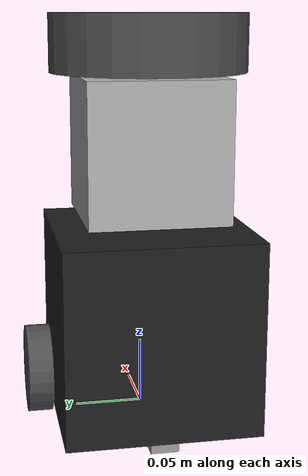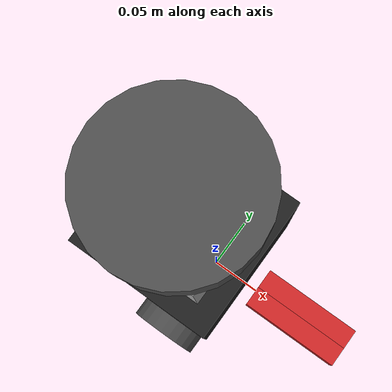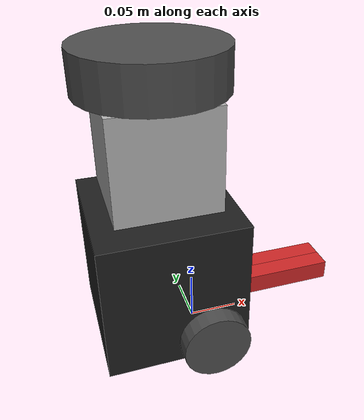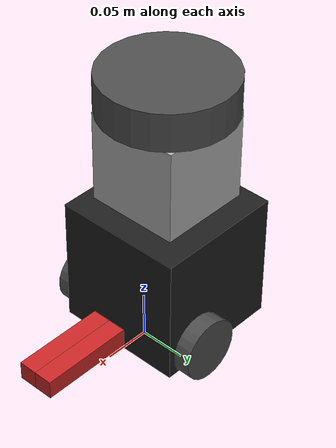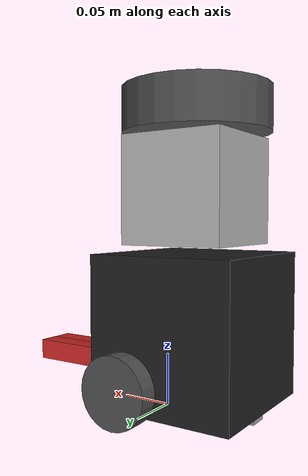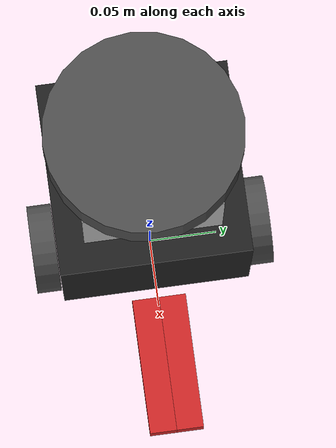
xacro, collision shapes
<?xml version="1.0" ?>
<robot name="turtlebot3_burger" xmlns:xacro="http://ros.org/wiki/xacro">
  <xacro:include filename="$(find turtlebot3_description)/urdf/common_properties.xacro"/>
  <xacro:include filename="$(find asl_turtlebot)/urdf/turtlebot3_burger.gazebo.xacro"/>

  <link name="base_footprint"/>

  <joint name="base_joint" type="fixed">
    <parent link="base_footprint"/>
    <child link="base_link"/>
    <origin xyz="0.0 0.0 0.010" rpy="0 0 0"/>
  </joint>

  <link name="base_link">
    <visual>
      <origin xyz="-0.032 0 0.0" rpy="0 0 0"/>
      <geometry>
        <mesh filename="package://turtlebot3_description/meshes/bases/burger_base.stl" scale="0.001 0.001 0.001"/>
      </geometry>
      <material name="light_black"/>
    </visual>

    <collision>
      <origin xyz="-0.032 0 0.070" rpy="0 0 0"/>
      <geometry>
        <box size="0.140 0.140 0.140"/>
      </geometry>
    </collision>

    <inertial>
      <origin xyz="-0.032 0 0" rpy="0 0 0"/>
      <mass value="1"/>
      <inertia ixx="0.01" ixy="0.0" ixz="0.0"
               iyy="0.01" iyz="0.0"
               izz="0.01" />
    </inertial>
  </link>

  <joint name="wheel_left_joint" type="continuous">
    <parent link="base_link"/>
    <child link="wheel_left_link"/>
    <origin xyz="0.0 0.08 0.023" rpy="${-pi*0.5} 0 0"/>
    <axis xyz="0 0 1"/>
  </joint>

  <link name="wheel_left_link">
    <visual>
      <origin xyz="0 0 0" rpy="${pi*0.5} 0 0"/>
      <geometry>
        <mesh filename="package://turtlebot3_description/meshes/wheels/left_tire.stl" scale="0.001 0.001 0.001"/>
      </geometry>
      <material name="dark"/>
    </visual>

    <collision>
      <origin xyz="0 0 0" rpy="0 0 0"/>
      <geometry>
        <cylinder length="0.018" radius="0.033"/>
      </geometry>
    </collision>

    <inertial>
      <origin xyz="0 0 0" />
      <mass value="0.01" />
      <inertia ixx="0.001" ixy="0.0" ixz="0.0"
               iyy="0.001" iyz="0.0"
               izz="0.001" />
    </inertial>
  </link>

  <joint name="wheel_right_joint" type="continuous">
    <parent link="base_link"/>
    <child link="wheel_right_link"/>
    <origin xyz="0.0 -0.08 0.023" rpy="${-pi*0.5} 0 0"/>
    <axis xyz="0 0 1"/>
  </joint>

  <link name="wheel_right_link">
    <visual>
      <origin xyz="0 0 0" rpy="${pi*0.5} 0 0"/>
      <geometry>
        <mesh filename="package://turtlebot3_description/meshes/wheels/right_tire.stl" scale="0.001 0.001 0.001"/>
      </geometry>
      <material name="dark"/>
    </visual>

    <collision>
      <origin xyz="0 0 0" rpy="0 0 0"/>
      <geometry>
        <cylinder length="0.018" radius="0.033"/>
      </geometry>
    </collision>

    <inertial>
      <origin xyz="0 0 0" />
      <mass value="0.01" />
      <inertia ixx="0.001" ixy="0.0" ixz="0.0"
               iyy="0.001" iyz="0.0"
               izz="0.001" />
    </inertial>
  </link>

  <joint name="caster_back_joint" type="fixed">
    <parent link="base_link"/>
    <child link="caster_back_link"/>
    <origin xyz="-0.081 0 -0.004" rpy="${-pi*0.5} 0 0"/>
  </joint>

  <link name="caster_back_link">
    <collision>
      <origin xyz="0 0 0" rpy="0 0 0"/>
      <geometry>
        <box size="0.030 0.010 0.020"/>
      </geometry>
    </collision>

    <inertial>
      <origin xyz="0 0 0" />
      <mass value="0.01" />
      <inertia ixx="0.001" ixy="0.0" ixz="0.0"
               iyy="0.001" iyz="0.0"
               izz="0.001" />
    </inertial>
  </link>

  <joint name="imu_joint" type="fixed">
    <parent link="base_link"/>
    <child link="imu_link"/>
    <origin xyz="-0.032 0 0.068" rpy="0 0 0"/>
  </joint>

  <link name="imu_link"/>

  <joint name="scan_joint" type="fixed">
    <parent link="base_link"/>
    <child link="base_scan"/>
    <origin xyz="-0.032 0 0.271" rpy="0 0 0"/>
  </joint>

  <link name="base_scan">
    <visual>
      <origin xyz="0 0 0.0" rpy="0 0 0"/>
      <geometry>
        <mesh filename="package://turtlebot3_description/meshes/sensors/lds.stl" scale="0.001 0.001 0.001"/>
      </geometry>
      <material name="dark"/>
    </visual>

    <collision>
      <origin xyz="0 0 0" rpy="0 0 0"/>
      <geometry>
        <cylinder length="0.0408" radius="0.070"/>
      </geometry>
    </collision>

    <inertial>
      <mass value="0.01" />
      <origin xyz="0 0 0" />
      <inertia ixx="0.001" ixy="0.0" ixz="0.0"
               iyy="0.001" iyz="0.0"
               izz="0.001" />
    </inertial>
  </link>

  <link name="base_camera">
    <visual>
      <origin xyz="0 0 0" rpy="0 0 0"/>
      <geometry>
        <box size=".1 .1 .1"/>
      </geometry>
    </visual>
    <collision>
      <origin xyz="0 0 0" rpy="0 0 0"/>
      <geometry>
        <box size=".1 .1 .1"/>
      </geometry>
    </collision>
    <inertial>
      <mass value="1e-5" />
      <origin xyz="0 0 0" rpy="0 0 0"/>
      <inertia ixx="1e-6" ixy="0" ixz="0" iyy="1e-6" iyz="0" izz="1e-6" />
    </inertial>
  </link>

  <joint name="camera_joint" type="fixed">
    <parent link="base_link"/>
    <child link="base_camera"/>
    <origin xyz="-0.032 0 0.198" rpy="0 0 0"/>
  </joint>

  <link name="right_gripper">
    <visual>
      <origin xyz="0.05 0 0" rpy="0 0 0"/>
      <geometry>
        <box size=".1 .02 .02"/>
      </geometry>
      <material name="red"/>
    </visual>
    <collision>
      <origin xyz="0.05 0 0" rpy="0 0 0"/>
      <geometry>
        <box size=".1 .02 .02"/>
      </geometry>
    </collision>
    <inertial>
      <mass value="1e-2"/>
      <origin xyz="0 0 0" rpy="0 0 0"/>
      <inertia ixx="1e-2" iyy="1e-3" izz="1e-2" ixy="0" ixz="0" iyz="0"/>
    </inertial>
  </link>

  <link name="left_gripper">
    <visual>
      <origin xyz="0.05 0 0" rpy="0 0 0"/>
      <geometry>
        <box size=".1 .02 .02"/>
      </geometry>
      <material name="red"/>
    </visual>
    <collision>
      <origin xyz="0.05 0 0" rpy="0 0 0"/>
      <geometry>
        <box size=".1 .02 .02"/>
      </geometry>
    </collision>
    <inertial>
      <mass value="1e-2"/>
      <origin xyz="0 0 0" rpy="0 0 0"/>
      <inertia ixx="1e-2" iyy="1e-3" izz="1e-2" ixy="0" ixz="0" iyz="0"/>
    </inertial>
  </link>

  <joint name="right_gripper_joint" type="prismatic">
    <parent link="base_link"/>
    <child link="right_gripper"/>
    <axis xyz="0 -1 0"/>
    <origin xyz="0.05 -0.01 0.03" rpy="0 0 0"/>
    <limit lower="0" upper=".03" velocity=".1" effort="100"/>
  </joint>

  <joint name="left_gripper_joint" type="prismatic">
    <parent link="base_link"/>
    <child link="left_gripper"/>
    <axis xyz="0 1 0"/>
    <origin xyz="0.05 0.01 0.03" rpy="0 0 0"/>
    <mimic joint="right_gripper_joint" multiplier="1"/>
    <limit lower="0" upper=".03" velocity=".1" effort="100"/>
  </joint>

  <transmission name="right_gripper_trans">
    <type>transmission_interface/SimpleTransmission</type>
    <joint name="right_gripper_joint">
      <hardwareInterface>hardware_interface/EffortJointInterface</hardwareInterface>
    </joint>
    <actuator name="right_gripper_motor">
      <hardwareInterface>hardware_interface/EffortJointInterface</hardwareInterface>
      <mechanicalReduction>1</mechanicalReduction>
    </actuator>
  </transmission>

  <transmission name="left_gripper_trans">
    <type>transmission_interface/SimpleTransmission</type>
    <joint name="left_gripper_joint">
      <hardwareInterface>hardware_interface/EffortJointInterface</hardwareInterface>
    </joint>
    <actuator name="left_gripper_motor">
      <hardwareInterface>hardware_interface/EffortJointInterface</hardwareInterface>
      <mechanicalReduction>1</mechanicalReduction>
    </actuator>
  </transmission>

</robot>
